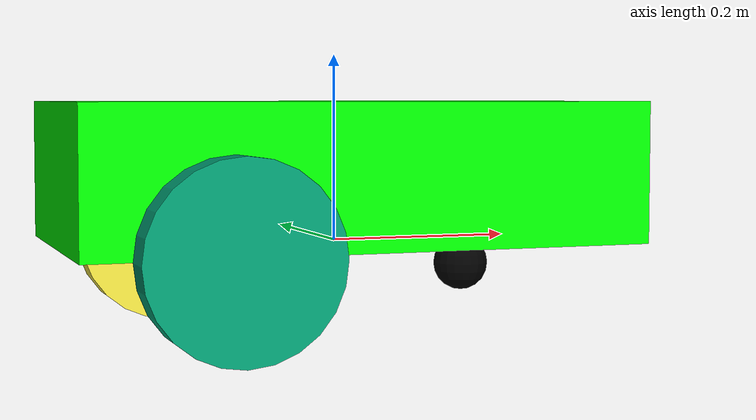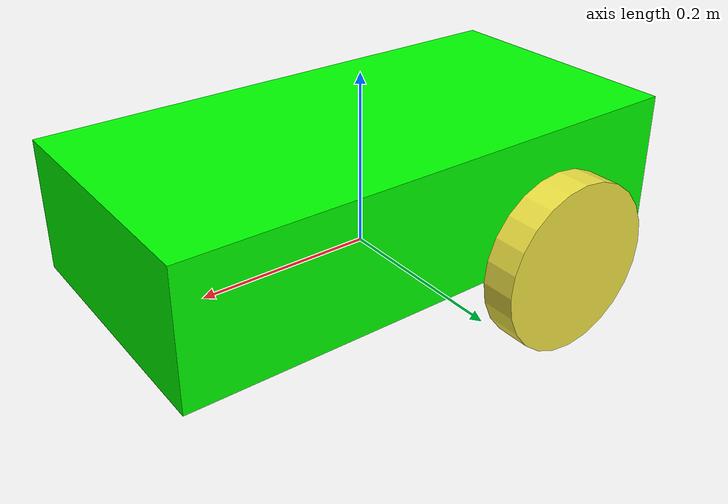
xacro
<?xml version="1.0"?>
<robot xmlns:xacro="http://www.ros.org/wiki/xacro" name="x001">
    <xacro:include filename="common_properties/common_colors.xacro" />
    <xacro:include filename="common_properties/common_inertials.xacro" />

    <xacro:include filename="x001_core.xacro" />

    <xacro:include filename="plugins/diff_drive.xacro" />
</robot>

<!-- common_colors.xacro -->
<robot xmlns:xacro="http://www.ros.org/wiki/xacro">
    <material name="white">
        <color rgba="1 1 1 1" />
    </material>
    <material name="black">
        <color rgba="0 0 0 1" />
    </material>
    <material name="blue">
        <color rgba="0 0 1 1" />
    </material>
    <material name="green">
        <color rgba="0 1 0 1" />
    </material>
    <material name="grey">
        <color rgba="0.5 0.5 0.5 1" />
    </material>
    <material name="orange">
        <color rgba="1 0.5 0 1" />
    </material>
    <material name="brown">
        <color rgba="0.87 0.72 0.53 1" />
    </material>
    <material name="purple">
        <color rgba="0.5 0 0.5 1" />
    </material>
    <material name="red">
        <color rgba="1 0 0 1" />
    </material>
</robot>

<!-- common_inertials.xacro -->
<robot xmlns:xacro="http://www.ros.org/wiki/xacro">
    <xacro:macro name="box_inertial" params="m l w h">
        <inertial>
            <mass value="${m}" />
            <inertia ixx="${1/12 * m * (h*h + l*l)}" ixy="0.0" ixz="0.0"
                iyy="${1/12 * m * (w*w + h*h)}"
                iyz="0.0" izz="${1/12 * m * (w*w + l*l)}" />
        </inertial>
    </xacro:macro>

    <xacro:macro name="cylinder_inertial" params="m r l">
        <inertial>
            <mass value="${m}" />
            <inertia ixx="${1/12 * m * (3 * r * r + l*l)}" ixy="0.0" ixz="0.0"
                iyy="${1/12 * m * (3 * r * r + l * l)}" iyz="0.0" izz="${1/2 * m * r * r}" />
        </inertial>
    </xacro:macro>

    <xacro:macro name="solid_sphere_inertial" params="m r">
        <mass value="${m}" />
        <inertia ixx="${2/3 * m * r * r}" ixy="0.0" ixz="0.0" iyy="${2/3 * m * r * r}" iyz="0.0"
            izz="${2/3 * m * r * r}" />
    </xacro:macro>
</robot>

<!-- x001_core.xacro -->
<robot xmlns:xacro="http://www.ros.org/wiki/xacro">
    <xacro:property name="base_length" value="0.6" />
    <xacro:property name="base_width" value="0.3" />
    <xacro:property name="base_height" value="0.15" />

    <xacro:property name="wheel_radius" value="0.1" />
    <xacro:property name="wheel_length" value="0.04" />

    <xacro:property name="caster_radius" value="0.03" />
    <xacro:property name="caster_mass" value="2" />

    <!-- BASE LINKS -->
    <link name="base_footprint" />

    <link name="base_link">
        <visual>
            <geometry>
                <box size="${base_length} ${base_width} ${base_height}" />
            </geometry>
            <material name="green" />
            <origin xyz="0 0 0" rpy="0.0 0.0 0.0" />
        </visual>
        <collision>
            <geometry>
                <box size="${base_length} ${base_width} ${base_height}" />
            </geometry>
        </collision>
        <xacro:box_inertial m="1.0" l="${base_length}" w="${base_width}" h="${base_height}" />
    </link>

    <joint name="base_footprint_base_link_joint" type="fixed">
        <parent link="base_footprint" />
        <child link="base_link" />
        <origin xyz="0 0.0 ${base_height / 2}" rpy="0.0 0.0 0.0" />
    </joint>

    <!-- WHEELS -->
    <xacro:macro name="wheel" params="prefix direction_sign">
        <link name="${prefix}_wheel">
            <visual>
                <geometry>
                    <cylinder radius="${wheel_radius}" length="${wheel_length}" />
                </geometry>
                <origin xyz="0.0 0.0 0.0" rpy="${pi / 2} 0.0 0.0" />
            </visual>

            <collision>
                <geometry>
                    <cylinder radius="${wheel_radius}" length="${wheel_length}" />
                </geometry>
                <origin xyz="0.0 0.0 0.0" rpy="0.0 0.0 0.0" />
            </collision>

            <xacro:cylinder_inertial m="0.1" r="${wheel_radius}" l="${wheel_length}" />
        </link>

        <joint name="base_${prefix}_wheel_joint" type="continuous">
            <parent link="base_link" />
            <child link="${prefix}_wheel" />

            <axis xyz="0.0 1 0.0" />
            <origin
                xyz="-${base_length * 1/4} ${direction_sign}${base_width / 2 + wheel_length / 2} ${-base_height / 2}"
                rpy="0.0 0.0 0.0" />
        </joint>
    </xacro:macro>

    <xacro:wheel prefix="left" direction_sign="-" />
    <xacro:wheel prefix="right" direction_sign="+" />

    <!-- CASTER -->
    <link name="caster_wheel">
        <visual>
            <geometry>
                <sphere radius="${caster_radius}" />
            </geometry>
            <material name="black" />
            <origin xyz="0.0 0.0 0.0" rpy="0.0 0.0 0.0" />
        </visual>
        <collision>
            <geometry>
                <sphere radius="${caster_radius}" />
            </geometry>
            <origin xyz="0.0 0.0 0.0" rpy="0.0 0.0 0.0" />
        </collision>
        <xacro:solid_sphere_inertial m="${caster_mass}" r="${caster_radius}" />
    </link>

    <joint name="base_caster_wheel_joint" type="fixed">
        <parent link="base_link" />
        <child link="caster_wheel" />
        <origin xyz="${base_length * 1/4} 0.0 -${caster_radius + base_height / 2}" rpy="0.0 0.0 0.0" />
    </joint>
</robot>
